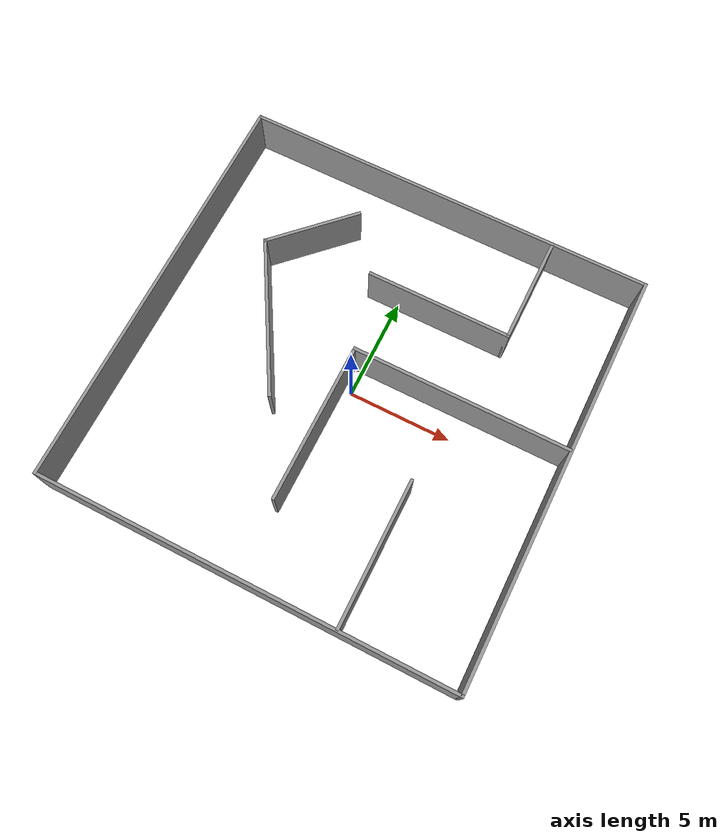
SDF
<?xml version='1.0'?>
<sdf version='1.6'>
  <model name='Maze'>
    <pose frame=''>0 0 0 0 -0 0</pose>
    <link name='Wall_0'>
      <collision name='Wall_0_Collision'>
        <geometry>
          <box>
            <size>20.15 0.15 2.5</size>
          </box>
        </geometry>
        <pose frame=''>0 0 1.25 0 -0 0</pose>
      </collision>
      <visual name='Wall_0_Visual'>
        <pose frame=''>0 0 1.25 0 -0 0</pose>
        <geometry>
          <box>
            <size>20.15 0.15 2.5</size>
          </box>
        </geometry>
        <material>
          <script>
            <uri>file://media/materials/scripts/gazebo.material</uri>
            <name>Gazebo/Grey</name>
          </script>
          <ambient>1 1 1 1</ambient>
        </material>
        <meta>
          <layer>0</layer>
        </meta>
      </visual>
      <pose frame=''>0 -10 0 0 -0 0</pose>
    </link>
    <link name='Wall_10'>
      <collision name='Wall_10_Collision'>
        <geometry>
          <box>
            <size>7 0.15 2.5</size>
          </box>
        </geometry>
        <pose frame=''>0 0 1.25 0 -0 0</pose>
      </collision>
      <visual name='Wall_10_Visual'>
        <pose frame=''>0 0 1.25 0 -0 0</pose>
        <geometry>
          <box>
            <size>7 0.15 2.5</size>
          </box>
        </geometry>
        <material>
          <script>
            <uri>file://media/materials/scripts/gazebo.material</uri>
            <name>Gazebo/Grey</name>
          </script>
          <ambient>1 1 1 1</ambient>
        </material>
        <meta>
          <layer>0</layer>
        </meta>
      </visual>
      <pose frame=''>4.44071 -6.49902 0 0 -0 1.5708</pose>
    </link>
    <link name='Wall_12'>
      <collision name='Wall_12_Collision'>
        <geometry>
          <box>
            <size>10.5 0.15 2.5</size>
          </box>
        </geometry>
        <pose frame=''>0 0 1.25 0 -0 0</pose>
      </collision>
      <visual name='Wall_12_Visual'>
        <pose frame=''>0 0 1.25 0 -0 0</pose>
        <geometry>
          <box>
            <size>10.5 0.15 2.5</size>
          </box>
        </geometry>
        <material>
          <script>
            <uri>file://media/materials/scripts/gazebo.material</uri>
            <name>Gazebo/Grey</name>
          </script>
          <ambient>1 1 1 1</ambient>
        </material>
        <meta>
          <layer>0</layer>
        </meta>
      </visual>
      <pose frame=''>4.74852 1.21705 0 0 -0 3.14159</pose>
    </link>
    <link name='Wall_13'>
      <collision name='Wall_13_Collision'>
        <geometry>
          <box>
            <size>7.75 0.15 2.5</size>
          </box>
        </geometry>
        <pose frame=''>0 0 1.25 0 -0 0</pose>
      </collision>
      <visual name='Wall_13_Visual'>
        <pose frame=''>0 0 1.25 0 -0 0</pose>
        <geometry>
          <box>
            <size>7.75 0.15 2.5</size>
          </box>
        </geometry>
        <material>
          <script>
            <uri>file://media/materials/scripts/gazebo.material</uri>
            <name>Gazebo/Grey</name>
          </script>
          <ambient>1 1 1 1</ambient>
        </material>
        <meta>
          <layer>0</layer>
        </meta>
      </visual>
      <pose frame=''>-0.426476 -2.58295 0 0 -0 -1.5708</pose>
    </link>
    <link name='Wall_15'>
      <collision name='Wall_15_Collision'>
        <geometry>
          <box>
            <size>7.75 0.15 2.5</size>
          </box>
        </geometry>
        <pose frame=''>0 0 1.25 0 -0 0</pose>
      </collision>
      <visual name='Wall_15_Visual'>
        <pose frame=''>0 0 1.25 0 -0 0</pose>
        <geometry>
          <box>
            <size>7.75 0.15 2.5</size>
          </box>
        </geometry>
        <material>
          <script>
            <uri>file://media/materials/scripts/gazebo.material</uri>
            <name>Gazebo/Grey</name>
          </script>
          <ambient>1 1 1 1</ambient>
        </material>
        <meta>
          <layer>0</layer>
        </meta>
      </visual>
      <pose frame=''>-4.66877 0.864939 0 0 -0 -1.0472</pose>
    </link>
    <link name='Wall_17'>
      <collision name='Wall_17_Collision'>
        <geometry>
          <box>
            <size>4.75 0.15 2.5</size>
          </box>
        </geometry>
        <pose frame=''>0 0 1.25 0 -0 0</pose>
      </collision>
      <visual name='Wall_17_Visual'>
        <pose frame=''>0 0 1.25 0 -0 0</pose>
        <geometry>
          <box>
            <size>4.75 0.15 2.5</size>
          </box>
        </geometry>
        <material>
          <script>
            <uri>file://media/materials/scripts/gazebo.material</uri>
            <name>Gazebo/Grey</name>
          </script>
          <ambient>1 1 1 1</ambient>
        </material>
        <meta>
          <layer>0</layer>
        </meta>
      </visual>
      <pose frame=''>-4.94243 5.78218 0 0 -0 0.785398</pose>
    </link>
    <link name='Wall_2'>
      <collision name='Wall_2_Collision'>
        <geometry>
          <box>
            <size>20.15 0.15 2.5</size>
          </box>
        </geometry>
        <pose frame=''>0 0 1.25 0 -0 0</pose>
      </collision>
      <visual name='Wall_2_Visual'>
        <pose frame=''>0 0 1.25 0 -0 0</pose>
        <geometry>
          <box>
            <size>20.15 0.15 2.5</size>
          </box>
        </geometry>
        <material>
          <script>
            <uri>file://media/materials/scripts/gazebo.material</uri>
            <name>Gazebo/Grey</name>
          </script>
          <ambient>1 1 1 1</ambient>
        </material>
        <meta>
          <layer>0</layer>
        </meta>
      </visual>
      <pose frame=''>10 0 0 0 -0 1.5708</pose>
    </link>
    <link name='Wall_20'>
      <collision name='Wall_20_Collision'>
        <geometry>
          <box>
            <size>7 0.15 2.5</size>
          </box>
        </geometry>
        <pose frame=''>0 0 1.25 0 -0 0</pose>
      </collision>
      <visual name='Wall_20_Visual'>
        <pose frame=''>0 0 1.25 0 -0 0</pose>
        <geometry>
          <box>
            <size>7 0.15 2.5</size>
          </box>
        </geometry>
        <material>
          <script>
            <uri>file://media/materials/scripts/gazebo.material</uri>
            <name>Gazebo/Grey</name>
          </script>
          <ambient>1 1 1 1</ambient>
        </material>
        <meta>
          <layer>0</layer>
        </meta>
      </visual>
      <pose frame=''>1.98814 4.85764 0 0 -0 0</pose>
    </link>
    <link name='Wall_21'>
      <collision name='Wall_21_Collision'>
        <geometry>
          <box>
            <size>5.25 0.15 2.5</size>
          </box>
        </geometry>
        <pose frame=''>0 0 1.25 0 -0 0</pose>
      </collision>
      <visual name='Wall_21_Visual'>
        <pose frame=''>0 0 1.25 0 -0 0</pose>
        <geometry>
          <box>
            <size>5.25 0.15 2.5</size>
          </box>
        </geometry>
        <material>
          <script>
            <uri>file://media/materials/scripts/gazebo.material</uri>
            <name>Gazebo/Grey</name>
          </script>
          <ambient>1 1 1 1</ambient>
        </material>
        <meta>
          <layer>0</layer>
        </meta>
      </visual>
      <pose frame=''>5.41314 7.40764 0 0 -0 1.5708</pose>
    </link>
    <link name='Wall_6'>
      <collision name='Wall_6_Collision'>
        <geometry>
          <box>
            <size>20.15 0.15 2.5</size>
          </box>
        </geometry>
        <pose frame=''>0 0 1.25 0 -0 0</pose>
      </collision>
      <visual name='Wall_6_Visual'>
        <pose frame=''>0 0 1.25 0 -0 0</pose>
        <geometry>
          <box>
            <size>20.15 0.15 2.5</size>
          </box>
        </geometry>
        <material>
          <script>
            <uri>file://media/materials/scripts/gazebo.material</uri>
            <name>Gazebo/Grey</name>
          </script>
          <ambient>1 1 1 1</ambient>
        </material>
        <meta>
          <layer>0</layer>
        </meta>
      </visual>
      <pose frame=''>0 10 0 0 -0 3.14159</pose>
    </link>
    <link name='Wall_7'>
      <collision name='Wall_7_Collision'>
        <geometry>
          <box>
            <size>20.15 0.15 2.5</size>
          </box>
        </geometry>
        <pose frame=''>0 0 1.25 0 -0 0</pose>
      </collision>
      <visual name='Wall_7_Visual'>
        <pose frame=''>0 0 1.25 0 -0 0</pose>
        <geometry>
          <box>
            <size>20.15 0.15 2.5</size>
          </box>
        </geometry>
        <material>
          <script>
            <uri>file://media/materials/scripts/gazebo.material</uri>
            <name>Gazebo/Grey</name>
          </script>
          <ambient>1 1 1 1</ambient>
        </material>
        <meta>
          <layer>0</layer>
        </meta>
      </visual>
      <pose frame=''>-10 0 0 0 -0 -1.5708</pose>
    </link>
    <static>1</static>
  </model>
</sdf>
